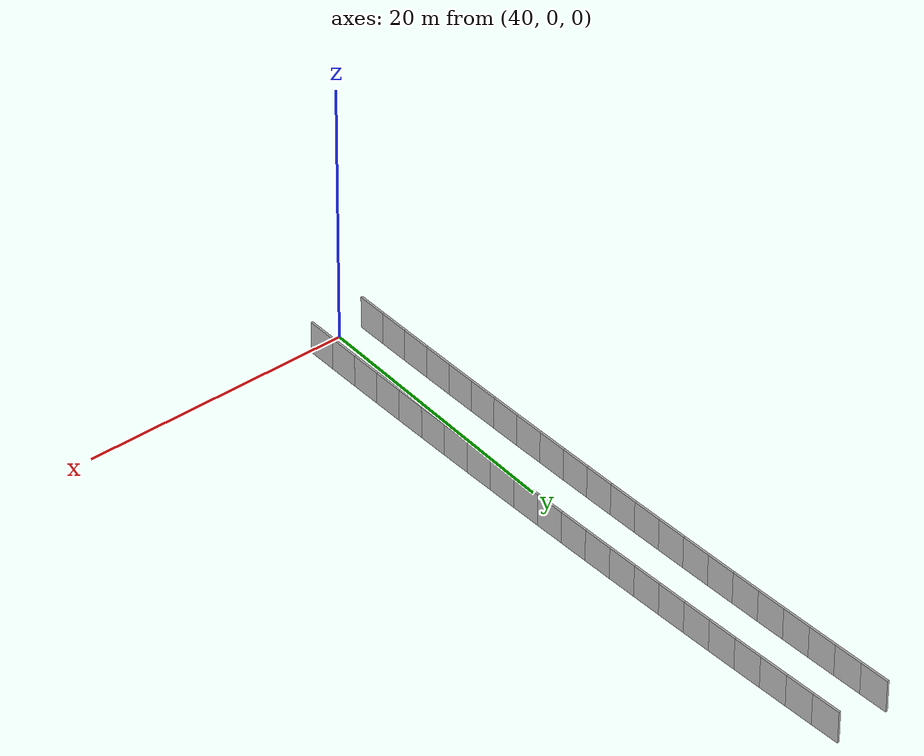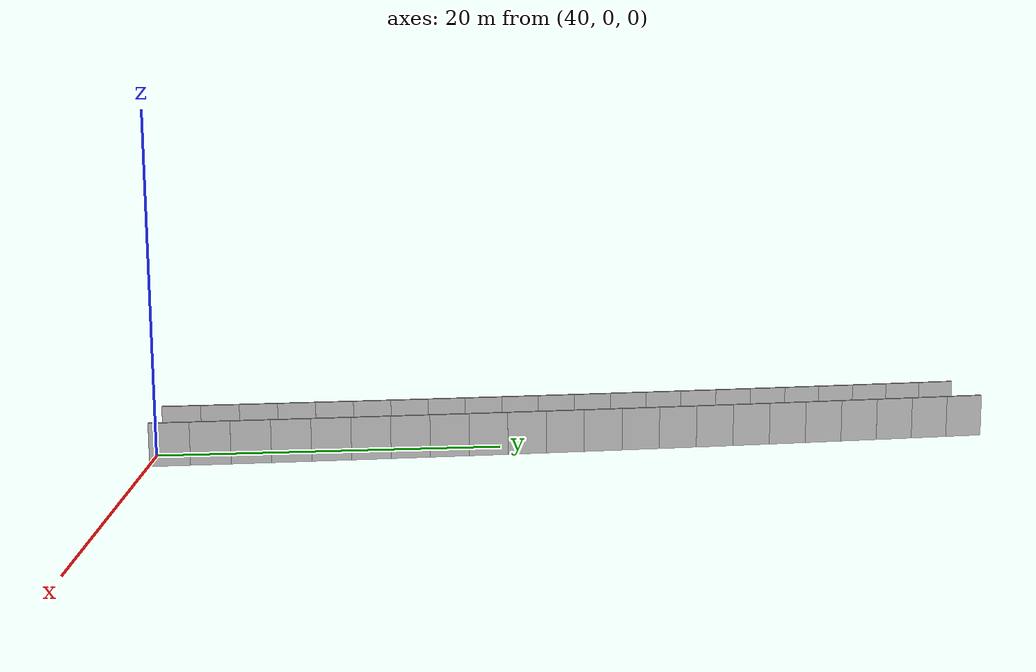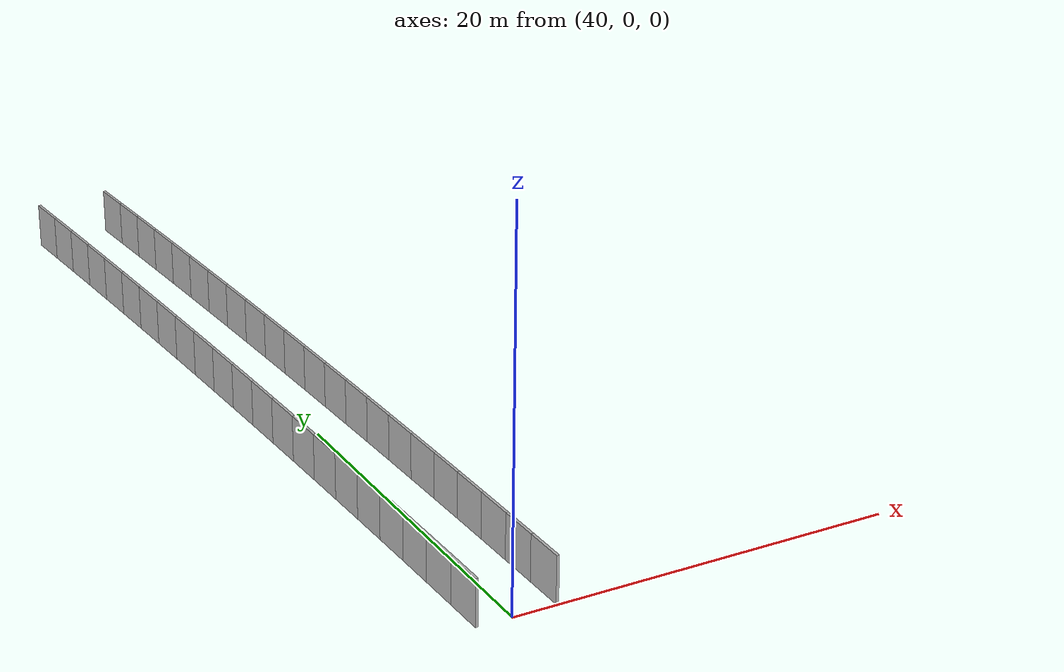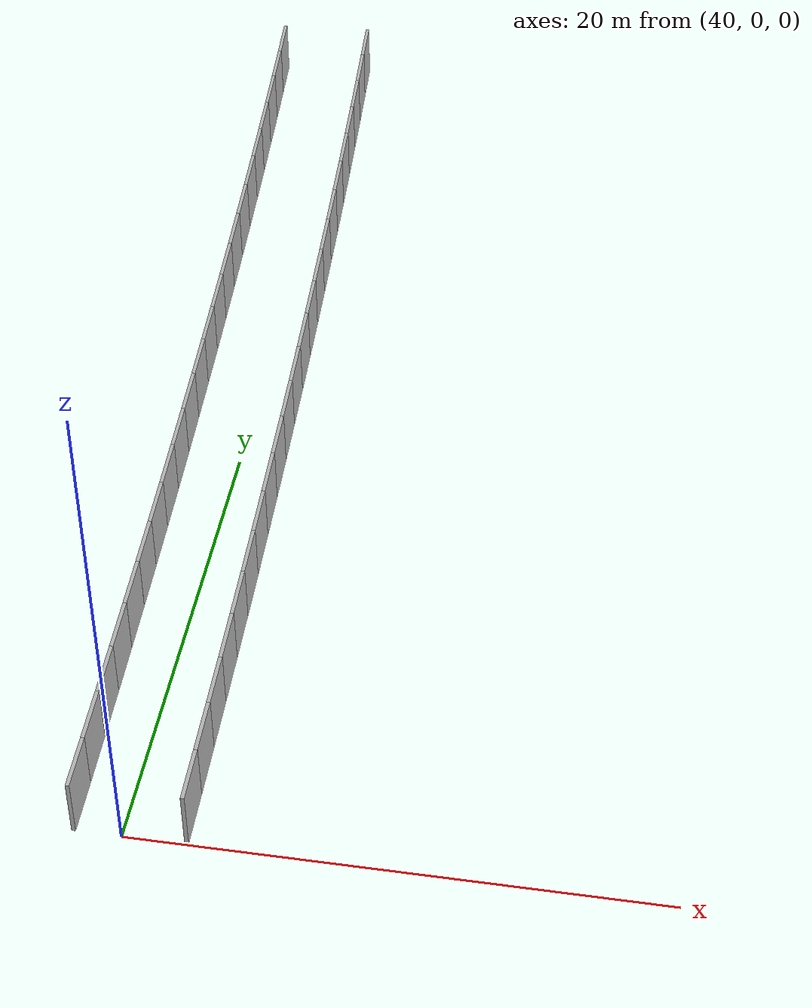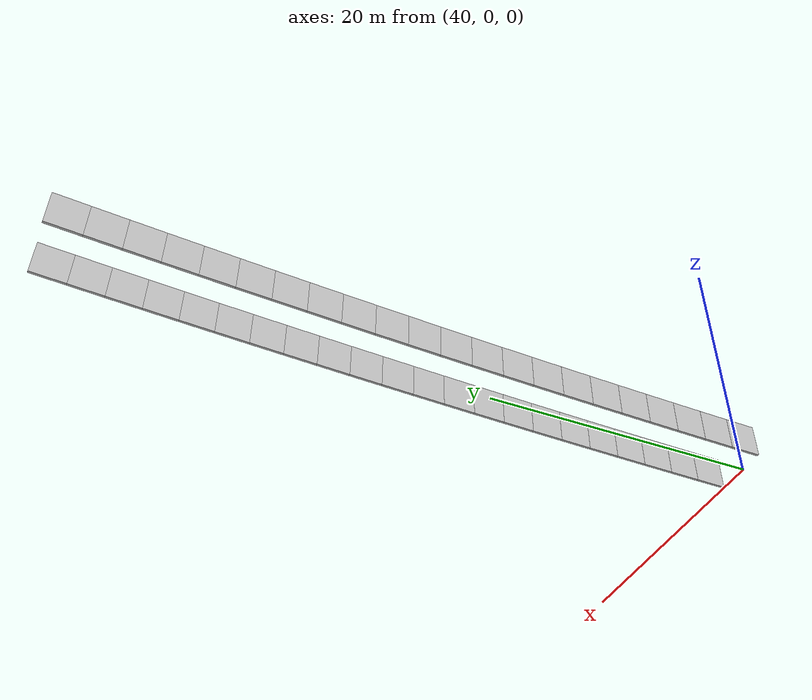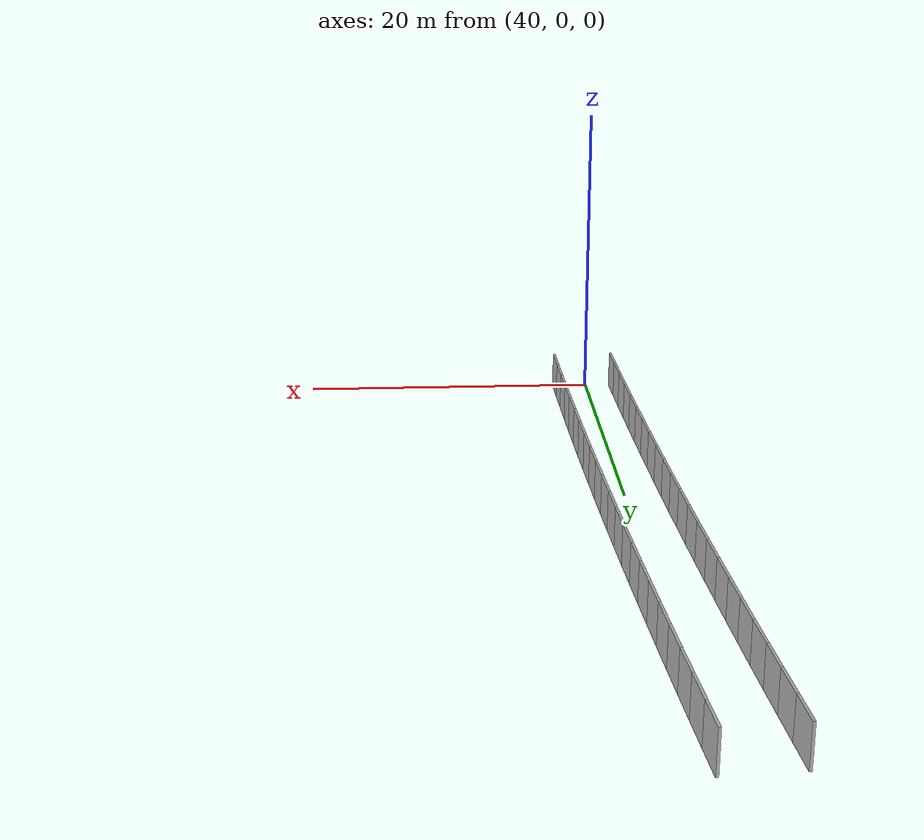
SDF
<?xml version="1.0" ?>
<sdf version="1.6">
  <model name="sps_4625">
    <pose frame="">0 0 0 0 -0 0</pose>
    <static>1</static>
    <self_collide>0</self_collide>
    <allow_auto_disable>0</allow_auto_disable>
    <link name="Wall4554">
      <kinematic>0</kinematic>
      <gravity>1</gravity>
      <self_collide>0</self_collide>
      <collision name="collision">
        <geometry>
          <box>
            <size>2.2547 0.15 2.5</size>
          </box>
        </geometry>
        <pose frame="">0 0 0 0 -0 0</pose>
      </collision>
      <visual name="visual">
        <geometry>
          <box>
            <size>2.2547 0.15 2.5</size>
          </box>
        </geometry>
        <pose frame="">0 0 0 0 -0 0</pose>
        <cast_shadows>1</cast_shadows>
        <transparency>0.0</transparency>
      </visual>
      <pose frame="">42.3228 1.20528 1.25 0 -0 1.5872</pose>
    </link>
    <link name="Wall4555">
      <kinematic>0</kinematic>
      <gravity>1</gravity>
      <self_collide>0</self_collide>
      <collision name="collision">
        <geometry>
          <box>
            <size>2.25442 0.15 2.5</size>
          </box>
        </geometry>
        <pose frame="">0 0 0 0 -0 0</pose>
      </collision>
      <visual name="visual">
        <geometry>
          <box>
            <size>2.25442 0.15 2.5</size>
          </box>
        </geometry>
        <pose frame="">0 0 0 0 -0 0</pose>
        <cast_shadows>1</cast_shadows>
        <transparency>0.0</transparency>
      </visual>
      <pose frame="">42.2832 3.45949 1.25 0 -0 1.58953</pose>
    </link>
    <link name="Wall4556">
      <kinematic>0</kinematic>
      <gravity>1</gravity>
      <self_collide>0</self_collide>
      <collision name="collision">
        <geometry>
          <box>
            <size>2.25472 0.15 2.5</size>
          </box>
        </geometry>
        <pose frame="">0 0 0 0 -0 0</pose>
      </collision>
      <visual name="visual">
        <geometry>
          <box>
            <size>2.25472 0.15 2.5</size>
          </box>
        </geometry>
        <pose frame="">0 0 0 0 -0 0</pose>
        <cast_shadows>1</cast_shadows>
        <transparency>0.0</transparency>
      </visual>
      <pose frame="">42.2382 5.71361 1.25 0 -0 1.59199</pose>
    </link>
    <link name="Wall4557">
      <kinematic>0</kinematic>
      <gravity>1</gravity>
      <self_collide>0</self_collide>
      <collision name="collision">
        <geometry>
          <box>
            <size>2.25459 0.15 2.5</size>
          </box>
        </geometry>
        <pose frame="">0 0 0 0 -0 0</pose>
      </collision>
      <visual name="visual">
        <geometry>
          <box>
            <size>2.25459 0.15 2.5</size>
          </box>
        </geometry>
        <pose frame="">0 0 0 0 -0 0</pose>
        <cast_shadows>1</cast_shadows>
        <transparency>0.0</transparency>
      </visual>
      <pose frame="">42.1878 7.9677 1.25 0 -0 1.5943</pose>
    </link>
    <link name="Wall4558">
      <kinematic>0</kinematic>
      <gravity>1</gravity>
      <self_collide>0</self_collide>
      <collision name="collision">
        <geometry>
          <box>
            <size>2.25455 0.15 2.5</size>
          </box>
        </geometry>
        <pose frame="">0 0 0 0 -0 0</pose>
      </collision>
      <visual name="visual">
        <geometry>
          <box>
            <size>2.25455 0.15 2.5</size>
          </box>
        </geometry>
        <pose frame="">0 0 0 0 -0 0</pose>
        <cast_shadows>1</cast_shadows>
        <transparency>0.0</transparency>
      </visual>
      <pose frame="">42.132 10.2216 1.25 0 -0 1.59679</pose>
    </link>
    <link name="Wall4559">
      <kinematic>0</kinematic>
      <gravity>1</gravity>
      <self_collide>0</self_collide>
      <collision name="collision">
        <geometry>
          <box>
            <size>2.25475 0.15 2.5</size>
          </box>
        </geometry>
        <pose frame="">0 0 0 0 -0 0</pose>
      </collision>
      <visual name="visual">
        <geometry>
          <box>
            <size>2.25475 0.15 2.5</size>
          </box>
        </geometry>
        <pose frame="">0 0 0 0 -0 0</pose>
        <cast_shadows>1</cast_shadows>
        <transparency>0.0</transparency>
      </visual>
      <pose frame="">42.0708 12.4754 1.25 0 -0 1.59911</pose>
    </link>
    <link name="Wall4560">
      <kinematic>0</kinematic>
      <gravity>1</gravity>
      <self_collide>0</self_collide>
      <collision name="collision">
        <geometry>
          <box>
            <size>2.25466 0.15 2.5</size>
          </box>
        </geometry>
        <pose frame="">0 0 0 0 -0 0</pose>
      </collision>
      <visual name="visual">
        <geometry>
          <box>
            <size>2.25466 0.15 2.5</size>
          </box>
        </geometry>
        <pose frame="">0 0 0 0 -0 0</pose>
        <cast_shadows>1</cast_shadows>
        <transparency>0.0</transparency>
      </visual>
      <pose frame="">42.0044 14.7291 1.25 0 -0 1.60139</pose>
    </link>
    <link name="Wall4561">
      <kinematic>0</kinematic>
      <gravity>1</gravity>
      <self_collide>0</self_collide>
      <collision name="collision">
        <geometry>
          <box>
            <size>2.25459 0.15 2.5</size>
          </box>
        </geometry>
        <pose frame="">0 0 0 0 -0 0</pose>
      </collision>
      <visual name="visual">
        <geometry>
          <box>
            <size>2.25459 0.15 2.5</size>
          </box>
        </geometry>
        <pose frame="">0 0 0 0 -0 0</pose>
        <cast_shadows>1</cast_shadows>
        <transparency>0.0</transparency>
      </visual>
      <pose frame="">41.9326 16.9826 1.25 0 -0 1.60388</pose>
    </link>
    <link name="Wall4562">
      <kinematic>0</kinematic>
      <gravity>1</gravity>
      <self_collide>0</self_collide>
      <collision name="collision">
        <geometry>
          <box>
            <size>2.25464 0.15 2.5</size>
          </box>
        </geometry>
        <pose frame="">0 0 0 0 -0 0</pose>
      </collision>
      <visual name="visual">
        <geometry>
          <box>
            <size>2.25464 0.15 2.5</size>
          </box>
        </geometry>
        <pose frame="">0 0 0 0 -0 0</pose>
        <cast_shadows>1</cast_shadows>
        <transparency>0.0</transparency>
      </visual>
      <pose frame="">41.8555 19.2359 1.25 0 -0 1.60613</pose>
    </link>
    <link name="Wall4563">
      <kinematic>0</kinematic>
      <gravity>1</gravity>
      <self_collide>0</self_collide>
      <collision name="collision">
        <geometry>
          <box>
            <size>2.2546 0.15 2.5</size>
          </box>
        </geometry>
        <pose frame="">0 0 0 0 -0 0</pose>
      </collision>
      <visual name="visual">
        <geometry>
          <box>
            <size>2.2546 0.15 2.5</size>
          </box>
        </geometry>
        <pose frame="">0 0 0 0 -0 0</pose>
        <cast_shadows>1</cast_shadows>
        <transparency>0.0</transparency>
      </visual>
      <pose frame="">41.773 21.489 1.25 0 -0 1.6086</pose>
    </link>
    <link name="Wall4564">
      <kinematic>0</kinematic>
      <gravity>1</gravity>
      <self_collide>0</self_collide>
      <collision name="collision">
        <geometry>
          <box>
            <size>2.25463 0.15 2.5</size>
          </box>
        </geometry>
        <pose frame="">0 0 0 0 -0 0</pose>
      </collision>
      <visual name="visual">
        <geometry>
          <box>
            <size>2.25463 0.15 2.5</size>
          </box>
        </geometry>
        <pose frame="">0 0 0 0 -0 0</pose>
        <cast_shadows>1</cast_shadows>
        <transparency>0.0</transparency>
      </visual>
      <pose frame="">41.6851 23.7419 1.25 0 -0 1.61098</pose>
    </link>
    <link name="Wall4565">
      <kinematic>0</kinematic>
      <gravity>1</gravity>
      <self_collide>0</self_collide>
      <collision name="collision">
        <geometry>
          <box>
            <size>2.25461 0.15 2.5</size>
          </box>
        </geometry>
        <pose frame="">0 0 0 0 -0 0</pose>
      </collision>
      <visual name="visual">
        <geometry>
          <box>
            <size>2.25461 0.15 2.5</size>
          </box>
        </geometry>
        <pose frame="">0 0 0 0 -0 0</pose>
        <cast_shadows>1</cast_shadows>
        <transparency>0.0</transparency>
      </visual>
      <pose frame="">41.5918 25.9946 1.25 0 -0 1.61339</pose>
    </link>
    <link name="Wall4566">
      <kinematic>0</kinematic>
      <gravity>1</gravity>
      <self_collide>0</self_collide>
      <collision name="collision">
        <geometry>
          <box>
            <size>2.25471 0.15 2.5</size>
          </box>
        </geometry>
        <pose frame="">0 0 0 0 -0 0</pose>
      </collision>
      <visual name="visual">
        <geometry>
          <box>
            <size>2.25471 0.15 2.5</size>
          </box>
        </geometry>
        <pose frame="">0 0 0 0 -0 0</pose>
        <cast_shadows>1</cast_shadows>
        <transparency>0.0</transparency>
      </visual>
      <pose frame="">41.4932 28.2471 1.25 0 -0 1.61569</pose>
    </link>
    <link name="Wall4567">
      <kinematic>0</kinematic>
      <gravity>1</gravity>
      <self_collide>0</self_collide>
      <collision name="collision">
        <geometry>
          <box>
            <size>2.25453 0.15 2.5</size>
          </box>
        </geometry>
        <pose frame="">0 0 0 0 -0 0</pose>
      </collision>
      <visual name="visual">
        <geometry>
          <box>
            <size>2.25453 0.15 2.5</size>
          </box>
        </geometry>
        <pose frame="">0 0 0 0 -0 0</pose>
        <cast_shadows>1</cast_shadows>
        <transparency>0.0</transparency>
      </visual>
      <pose frame="">41.3894 30.4993 1.25 0 -0 1.61808</pose>
    </link>
    <link name="Wall4568">
      <kinematic>0</kinematic>
      <gravity>1</gravity>
      <self_collide>0</self_collide>
      <collision name="collision">
        <geometry>
          <box>
            <size>2.25397 0.15 2.5</size>
          </box>
        </geometry>
        <pose frame="">0 0 0 0 -0 0</pose>
      </collision>
      <visual name="visual">
        <geometry>
          <box>
            <size>2.25397 0.15 2.5</size>
          </box>
        </geometry>
        <pose frame="">0 0 0 0 -0 0</pose>
        <cast_shadows>1</cast_shadows>
        <transparency>0.0</transparency>
      </visual>
      <pose frame="">41.2799 32.7509 1.25 0 -0 1.6207</pose>
    </link>
    <link name="Wall4569">
      <kinematic>0</kinematic>
      <gravity>1</gravity>
      <self_collide>0</self_collide>
      <collision name="collision">
        <geometry>
          <box>
            <size>2.2549 0.15 2.5</size>
          </box>
        </geometry>
        <pose frame="">0 0 0 0 -0 0</pose>
      </collision>
      <visual name="visual">
        <geometry>
          <box>
            <size>2.2549 0.15 2.5</size>
          </box>
        </geometry>
        <pose frame="">0 0 0 0 -0 0</pose>
        <cast_shadows>1</cast_shadows>
        <transparency>0.0</transparency>
      </visual>
      <pose frame="">41.1648 35.0024 1.25 0 -0 1.62298</pose>
    </link>
    <link name="Wall4570">
      <kinematic>0</kinematic>
      <gravity>1</gravity>
      <self_collide>0</self_collide>
      <collision name="collision">
        <geometry>
          <box>
            <size>2.25449 0.15 2.5</size>
          </box>
        </geometry>
        <pose frame="">0 0 0 0 -0 0</pose>
      </collision>
      <visual name="visual">
        <geometry>
          <box>
            <size>2.25449 0.15 2.5</size>
          </box>
        </geometry>
        <pose frame="">0 0 0 0 -0 0</pose>
        <cast_shadows>1</cast_shadows>
        <transparency>0.0</transparency>
      </visual>
      <pose frame="">41.0448 37.2539 1.25 0 -0 1.62519</pose>
    </link>
    <link name="Wall4571">
      <kinematic>0</kinematic>
      <gravity>1</gravity>
      <self_collide>0</self_collide>
      <collision name="collision">
        <geometry>
          <box>
            <size>2.25466 0.15 2.5</size>
          </box>
        </geometry>
        <pose frame="">0 0 0 0 -0 0</pose>
      </collision>
      <visual name="visual">
        <geometry>
          <box>
            <size>2.25466 0.15 2.5</size>
          </box>
        </geometry>
        <pose frame="">0 0 0 0 -0 0</pose>
        <cast_shadows>1</cast_shadows>
        <transparency>0.0</transparency>
      </visual>
      <pose frame="">40.9196 39.505 1.25 0 -0 1.62751</pose>
    </link>
    <link name="Wall4572">
      <kinematic>0</kinematic>
      <gravity>1</gravity>
      <self_collide>0</self_collide>
      <collision name="collision">
        <geometry>
          <box>
            <size>2.25457 0.15 2.5</size>
          </box>
        </geometry>
        <pose frame="">0 0 0 0 -0 0</pose>
      </collision>
      <visual name="visual">
        <geometry>
          <box>
            <size>2.25457 0.15 2.5</size>
          </box>
        </geometry>
        <pose frame="">0 0 0 0 -0 0</pose>
        <cast_shadows>1</cast_shadows>
        <transparency>0.0</transparency>
      </visual>
      <pose frame="">40.7889 41.7558 1.25 0 -0 1.63009</pose>
    </link>
    <link name="Wall4573">
      <kinematic>0</kinematic>
      <gravity>1</gravity>
      <self_collide>0</self_collide>
      <collision name="collision">
        <geometry>
          <box>
            <size>2.25481 0.15 2.5</size>
          </box>
        </geometry>
        <pose frame="">0 0 0 0 -0 0</pose>
      </collision>
      <visual name="visual">
        <geometry>
          <box>
            <size>2.25481 0.15 2.5</size>
          </box>
        </geometry>
        <pose frame="">0 0 0 0 -0 0</pose>
        <cast_shadows>1</cast_shadows>
        <transparency>0.0</transparency>
      </visual>
      <pose frame="">40.6528 44.0064 1.25 0 -0 1.63231</pose>
    </link>
    <link name="Wall4574">
      <kinematic>0</kinematic>
      <gravity>1</gravity>
      <self_collide>0</self_collide>
      <collision name="collision">
        <geometry>
          <box>
            <size>2.25442 0.15 2.5</size>
          </box>
        </geometry>
        <pose frame="">0 0 0 0 -0 0</pose>
      </collision>
      <visual name="visual">
        <geometry>
          <box>
            <size>2.25442 0.15 2.5</size>
          </box>
        </geometry>
        <pose frame="">0 0 0 0 -0 0</pose>
        <cast_shadows>1</cast_shadows>
        <transparency>0.0</transparency>
      </visual>
      <pose frame="">40.5115 46.2566 1.25 0 -0 1.63471</pose>
    </link>
    <link name="Wall4575">
      <kinematic>0</kinematic>
      <gravity>1</gravity>
      <self_collide>0</self_collide>
      <collision name="collision">
        <geometry>
          <box>
            <size>2.25459 0.15 2.5</size>
          </box>
        </geometry>
        <pose frame="">0 0 0 0 -0 0</pose>
      </collision>
      <visual name="visual">
        <geometry>
          <box>
            <size>2.25459 0.15 2.5</size>
          </box>
        </geometry>
        <pose frame="">0 0 0 0 -0 0</pose>
        <cast_shadows>1</cast_shadows>
        <transparency>0.0</transparency>
      </visual>
      <pose frame="">40.3648 48.5063 1.25 0 -0 1.63712</pose>
    </link>
    <link name="Wall6279">
      <kinematic>0</kinematic>
      <gravity>1</gravity>
      <self_collide>0</self_collide>
      <collision name="collision">
        <geometry>
          <box>
            <size>2.24469 0.15 2.5</size>
          </box>
        </geometry>
        <pose frame="">0 0 0 0 -0 0</pose>
      </collision>
      <visual name="visual">
        <geometry>
          <box>
            <size>2.24469 0.15 2.5</size>
          </box>
        </geometry>
        <pose frame="">0 0 0 0 -0 0</pose>
        <cast_shadows>1</cast_shadows>
        <transparency>0.0</transparency>
      </visual>
      <pose frame="">38.1841 1.13728 1.25 0 -0 1.58719</pose>
    </link>
    <link name="Wall6280">
      <kinematic>0</kinematic>
      <gravity>1</gravity>
      <self_collide>0</self_collide>
      <collision name="collision">
        <geometry>
          <box>
            <size>2.2446 0.15 2.5</size>
          </box>
        </geometry>
        <pose frame="">0 0 0 0 -0 0</pose>
      </collision>
      <visual name="visual">
        <geometry>
          <box>
            <size>2.2446 0.15 2.5</size>
          </box>
        </geometry>
        <pose frame="">0 0 0 0 -0 0</pose>
        <cast_shadows>1</cast_shadows>
        <transparency>0.0</transparency>
      </visual>
      <pose frame="">38.1446 3.38158 1.25 0 -0 1.58961</pose>
    </link>
    <link name="Wall6281">
      <kinematic>0</kinematic>
      <gravity>1</gravity>
      <self_collide>0</self_collide>
      <collision name="collision">
        <geometry>
          <box>
            <size>2.2447 0.15 2.5</size>
          </box>
        </geometry>
        <pose frame="">0 0 0 0 -0 0</pose>
      </collision>
      <visual name="visual">
        <geometry>
          <box>
            <size>2.2447 0.15 2.5</size>
          </box>
        </geometry>
        <pose frame="">0 0 0 0 -0 0</pose>
        <cast_shadows>1</cast_shadows>
        <transparency>0.0</transparency>
      </visual>
      <pose frame="">38.0998 5.62578 1.25 0 -0 1.5919</pose>
    </link>
    <link name="Wall6282">
      <kinematic>0</kinematic>
      <gravity>1</gravity>
      <self_collide>0</self_collide>
      <collision name="collision">
        <geometry>
          <box>
            <size>2.24483 0.15 2.5</size>
          </box>
        </geometry>
        <pose frame="">0 0 0 0 -0 0</pose>
      </collision>
      <visual name="visual">
        <geometry>
          <box>
            <size>2.24483 0.15 2.5</size>
          </box>
        </geometry>
        <pose frame="">0 0 0 0 -0 0</pose>
        <cast_shadows>1</cast_shadows>
        <transparency>0.0</transparency>
      </visual>
      <pose frame="">38.0496 7.86998 1.25 0 -0 1.59443</pose>
    </link>
    <link name="Wall6283">
      <kinematic>0</kinematic>
      <gravity>1</gravity>
      <self_collide>0</self_collide>
      <collision name="collision">
        <geometry>
          <box>
            <size>2.24495 0.15 2.5</size>
          </box>
        </geometry>
        <pose frame="">0 0 0 0 -0 0</pose>
      </collision>
      <visual name="visual">
        <geometry>
          <box>
            <size>2.24495 0.15 2.5</size>
          </box>
        </geometry>
        <pose frame="">0 0 0 0 -0 0</pose>
        <cast_shadows>1</cast_shadows>
        <transparency>0.0</transparency>
      </visual>
      <pose frame="">37.994 10.1142 1.25 0 -0 1.59663</pose>
    </link>
    <link name="Wall6284">
      <kinematic>0</kinematic>
      <gravity>1</gravity>
      <self_collide>0</self_collide>
      <collision name="collision">
        <geometry>
          <box>
            <size>2.24473 0.15 2.5</size>
          </box>
        </geometry>
        <pose frame="">0 0 0 0 -0 0</pose>
      </collision>
      <visual name="visual">
        <geometry>
          <box>
            <size>2.24473 0.15 2.5</size>
          </box>
        </geometry>
        <pose frame="">0 0 0 0 -0 0</pose>
        <cast_shadows>1</cast_shadows>
        <transparency>0.0</transparency>
      </visual>
      <pose frame="">37.9333 12.3582 1.25 0 -0 1.59905</pose>
    </link>
    <link name="Wall6285">
      <kinematic>0</kinematic>
      <gravity>1</gravity>
      <self_collide>0</self_collide>
      <collision name="collision">
        <geometry>
          <box>
            <size>2.24465 0.15 2.5</size>
          </box>
        </geometry>
        <pose frame="">0 0 0 0 -0 0</pose>
      </collision>
      <visual name="visual">
        <geometry>
          <box>
            <size>2.24465 0.15 2.5</size>
          </box>
        </geometry>
        <pose frame="">0 0 0 0 -0 0</pose>
        <cast_shadows>1</cast_shadows>
        <transparency>0.0</transparency>
      </visual>
      <pose frame="">37.8671 14.6019 1.25 0 -0 1.60153</pose>
    </link>
    <link name="Wall6286">
      <kinematic>0</kinematic>
      <gravity>1</gravity>
      <self_collide>0</self_collide>
      <collision name="collision">
        <geometry>
          <box>
            <size>2.245 0.15 2.5</size>
          </box>
        </geometry>
        <pose frame="">0 0 0 0 -0 0</pose>
      </collision>
      <visual name="visual">
        <geometry>
          <box>
            <size>2.245 0.15 2.5</size>
          </box>
        </geometry>
        <pose frame="">0 0 0 0 -0 0</pose>
        <cast_shadows>1</cast_shadows>
        <transparency>0.0</transparency>
      </visual>
      <pose frame="">37.7956 16.8456 1.25 0 -0 1.60386</pose>
    </link>
    <link name="Wall6287">
      <kinematic>0</kinematic>
      <gravity>1</gravity>
      <self_collide>0</self_collide>
      <collision name="collision">
        <geometry>
          <box>
            <size>2.24464 0.15 2.5</size>
          </box>
        </geometry>
        <pose frame="">0 0 0 0 -0 0</pose>
      </collision>
      <visual name="visual">
        <geometry>
          <box>
            <size>2.24464 0.15 2.5</size>
          </box>
        </geometry>
        <pose frame="">0 0 0 0 -0 0</pose>
        <cast_shadows>1</cast_shadows>
        <transparency>0.0</transparency>
      </visual>
      <pose frame="">37.7187 19.0891 1.25 0 -0 1.60626</pose>
    </link>
    <link name="Wall6288">
      <kinematic>0</kinematic>
      <gravity>1</gravity>
      <self_collide>0</self_collide>
      <collision name="collision">
        <geometry>
          <box>
            <size>2.245 0.15 2.5</size>
          </box>
        </geometry>
        <pose frame="">0 0 0 0 -0 0</pose>
      </collision>
      <visual name="visual">
        <geometry>
          <box>
            <size>2.245 0.15 2.5</size>
          </box>
        </geometry>
        <pose frame="">0 0 0 0 -0 0</pose>
        <cast_shadows>1</cast_shadows>
        <transparency>0.0</transparency>
      </visual>
      <pose frame="">37.6366 21.3324 1.25 0 -0 1.60849</pose>
    </link>
    <link name="Wall6289">
      <kinematic>0</kinematic>
      <gravity>1</gravity>
      <self_collide>0</self_collide>
      <collision name="collision">
        <geometry>
          <box>
            <size>2.24461 0.15 2.5</size>
          </box>
        </geometry>
        <pose frame="">0 0 0 0 -0 0</pose>
      </collision>
      <visual name="visual">
        <geometry>
          <box>
            <size>2.24461 0.15 2.5</size>
          </box>
        </geometry>
        <pose frame="">0 0 0 0 -0 0</pose>
        <cast_shadows>1</cast_shadows>
        <transparency>0.0</transparency>
      </visual>
      <pose frame="">37.5492 23.5755 1.25 0 -0 1.611</pose>
    </link>
    <link name="Wall6290">
      <kinematic>0</kinematic>
      <gravity>1</gravity>
      <self_collide>0</self_collide>
      <collision name="collision">
        <geometry>
          <box>
            <size>2.24502 0.15 2.5</size>
          </box>
        </geometry>
        <pose frame="">0 0 0 0 -0 0</pose>
      </collision>
      <visual name="visual">
        <geometry>
          <box>
            <size>2.24502 0.15 2.5</size>
          </box>
        </geometry>
        <pose frame="">0 0 0 0 -0 0</pose>
        <cast_shadows>1</cast_shadows>
        <transparency>0.0</transparency>
      </visual>
      <pose frame="">37.4563 25.8184 1.25 0 -0 1.61338</pose>
    </link>
    <link name="Wall6291">
      <kinematic>0</kinematic>
      <gravity>1</gravity>
      <self_collide>0</self_collide>
      <collision name="collision">
        <geometry>
          <box>
            <size>2.24445 0.15 2.5</size>
          </box>
        </geometry>
        <pose frame="">0 0 0 0 -0 0</pose>
      </collision>
      <visual name="visual">
        <geometry>
          <box>
            <size>2.24445 0.15 2.5</size>
          </box>
        </geometry>
        <pose frame="">0 0 0 0 -0 0</pose>
        <cast_shadows>1</cast_shadows>
        <transparency>0.0</transparency>
      </visual>
      <pose frame="">37.3581 28.061 1.25 0 -0 1.61574</pose>
    </link>
    <link name="Wall6292">
      <kinematic>0</kinematic>
      <gravity>1</gravity>
      <self_collide>0</self_collide>
      <collision name="collision">
        <geometry>
          <box>
            <size>2.24493 0.15 2.5</size>
          </box>
        </geometry>
        <pose frame="">0 0 0 0 -0 0</pose>
      </collision>
      <visual name="visual">
        <geometry>
          <box>
            <size>2.24493 0.15 2.5</size>
          </box>
        </geometry>
        <pose frame="">0 0 0 0 -0 0</pose>
        <cast_shadows>1</cast_shadows>
        <transparency>0.0</transparency>
      </visual>
      <pose frame="">37.2547 30.3033 1.25 0 -0 1.61801</pose>
    </link>
    <link name="Wall6293">
      <kinematic>0</kinematic>
      <gravity>1</gravity>
      <self_collide>0</self_collide>
      <collision name="collision">
        <geometry>
          <box>
            <size>2.24419 0.15 2.5</size>
          </box>
        </geometry>
        <pose frame="">0 0 0 0 -0 0</pose>
      </collision>
      <visual name="visual">
        <geometry>
          <box>
            <size>2.24419 0.15 2.5</size>
          </box>
        </geometry>
        <pose frame="">0 0 0 0 -0 0</pose>
        <cast_shadows>1</cast_shadows>
        <transparency>0.0</transparency>
      </visual>
      <pose frame="">37.1457 32.5452 1.25 0 -0 1.62072</pose>
    </link>
    <link name="Wall6294">
      <kinematic>0</kinematic>
      <gravity>1</gravity>
      <self_collide>0</self_collide>
      <collision name="collision">
        <geometry>
          <box>
            <size>2.24481 0.15 2.5</size>
          </box>
        </geometry>
        <pose frame="">0 0 0 0 -0 0</pose>
      </collision>
      <visual name="visual">
        <geometry>
          <box>
            <size>2.24481 0.15 2.5</size>
          </box>
        </geometry>
        <pose frame="">0 0 0 0 -0 0</pose>
        <cast_shadows>1</cast_shadows>
        <transparency>0.0</transparency>
      </visual>
      <pose frame="">37.0312 34.7868 1.25 0 -0 1.62294</pose>
    </link>
    <link name="Wall6295">
      <kinematic>0</kinematic>
      <gravity>1</gravity>
      <self_collide>0</self_collide>
      <collision name="collision">
        <geometry>
          <box>
            <size>2.24477 0.15 2.5</size>
          </box>
        </geometry>
        <pose frame="">0 0 0 0 -0 0</pose>
      </collision>
      <visual name="visual">
        <geometry>
          <box>
            <size>2.24477 0.15 2.5</size>
          </box>
        </geometry>
        <pose frame="">0 0 0 0 -0 0</pose>
        <cast_shadows>1</cast_shadows>
        <transparency>0.0</transparency>
      </visual>
      <pose frame="">36.9117 37.0284 1.25 0 -0 1.62518</pose>
    </link>
    <link name="Wall6296">
      <kinematic>0</kinematic>
      <gravity>1</gravity>
      <self_collide>0</self_collide>
      <collision name="collision">
        <geometry>
          <box>
            <size>2.24478 0.15 2.5</size>
          </box>
        </geometry>
        <pose frame="">0 0 0 0 -0 0</pose>
      </collision>
      <visual name="visual">
        <geometry>
          <box>
            <size>2.24478 0.15 2.5</size>
          </box>
        </geometry>
        <pose frame="">0 0 0 0 -0 0</pose>
        <cast_shadows>1</cast_shadows>
        <transparency>0.0</transparency>
      </visual>
      <pose frame="">36.7869 39.2697 1.25 0 -0 1.62768</pose>
    </link>
    <link name="Wall6297">
      <kinematic>0</kinematic>
      <gravity>1</gravity>
      <self_collide>0</self_collide>
      <collision name="collision">
        <geometry>
          <box>
            <size>2.24495 0.15 2.5</size>
          </box>
        </geometry>
        <pose frame="">0 0 0 0 -0 0</pose>
      </collision>
      <visual name="visual">
        <geometry>
          <box>
            <size>2.24495 0.15 2.5</size>
          </box>
        </geometry>
        <pose frame="">0 0 0 0 -0 0</pose>
        <cast_shadows>1</cast_shadows>
        <transparency>0.0</transparency>
      </visual>
      <pose frame="">36.6568 41.5108 1.25 0 -0 1.62988</pose>
    </link>
    <link name="Wall6298">
      <kinematic>0</kinematic>
      <gravity>1</gravity>
      <self_collide>0</self_collide>
      <collision name="collision">
        <geometry>
          <box>
            <size>2.24468 0.15 2.5</size>
          </box>
        </geometry>
        <pose frame="">0 0 0 0 -0 0</pose>
      </collision>
      <visual name="visual">
        <geometry>
          <box>
            <size>2.24468 0.15 2.5</size>
          </box>
        </geometry>
        <pose frame="">0 0 0 0 -0 0</pose>
        <cast_shadows>1</cast_shadows>
        <transparency>0.0</transparency>
      </visual>
      <pose frame="">36.5214 43.7515 1.25 0 -0 1.63242</pose>
    </link>
    <link name="Wall6299">
      <kinematic>0</kinematic>
      <gravity>1</gravity>
      <self_collide>0</self_collide>
      <collision name="collision">
        <geometry>
          <box>
            <size>2.24476 0.15 2.5</size>
          </box>
        </geometry>
        <pose frame="">0 0 0 0 -0 0</pose>
      </collision>
      <visual name="visual">
        <geometry>
          <box>
            <size>2.24476 0.15 2.5</size>
          </box>
        </geometry>
        <pose frame="">0 0 0 0 -0 0</pose>
        <cast_shadows>1</cast_shadows>
        <transparency>0.0</transparency>
      </visual>
      <pose frame="">36.3805 45.9918 1.25 0 -0 1.63471</pose>
    </link>
    <link name="Wall6300">
      <kinematic>0</kinematic>
      <gravity>1</gravity>
      <self_collide>0</self_collide>
      <collision name="collision">
        <geometry>
          <box>
            <size>2.24474 0.15 2.5</size>
          </box>
        </geometry>
        <pose frame="">0 0 0 0 -0 0</pose>
      </collision>
      <visual name="visual">
        <geometry>
          <box>
            <size>2.24474 0.15 2.5</size>
          </box>
        </geometry>
        <pose frame="">0 0 0 0 -0 0</pose>
        <cast_shadows>1</cast_shadows>
        <transparency>0.0</transparency>
      </visual>
      <pose frame="">36.2345 48.2318 1.25 0 -0 1.63713</pose>
    </link>
  </model>
</sdf>
